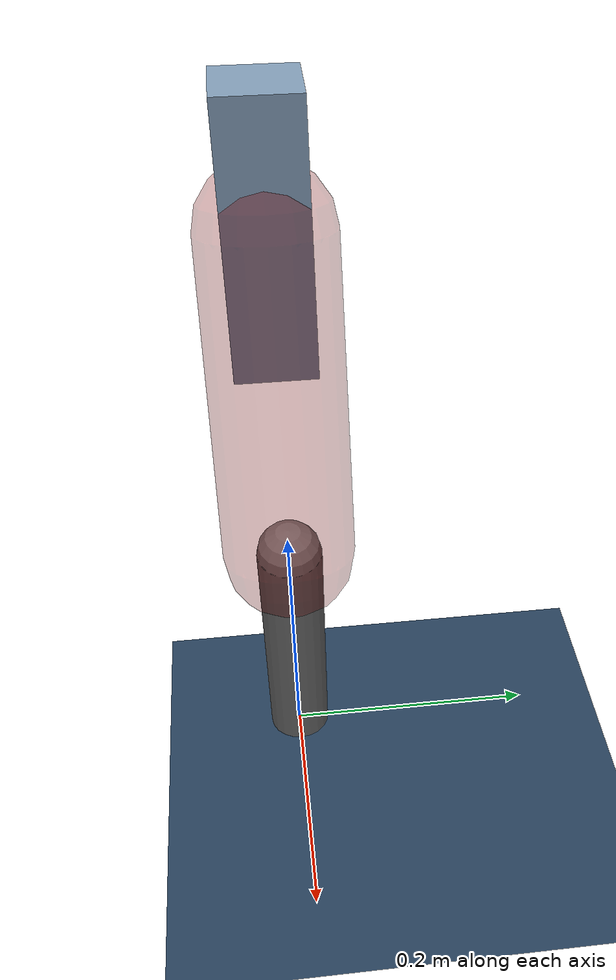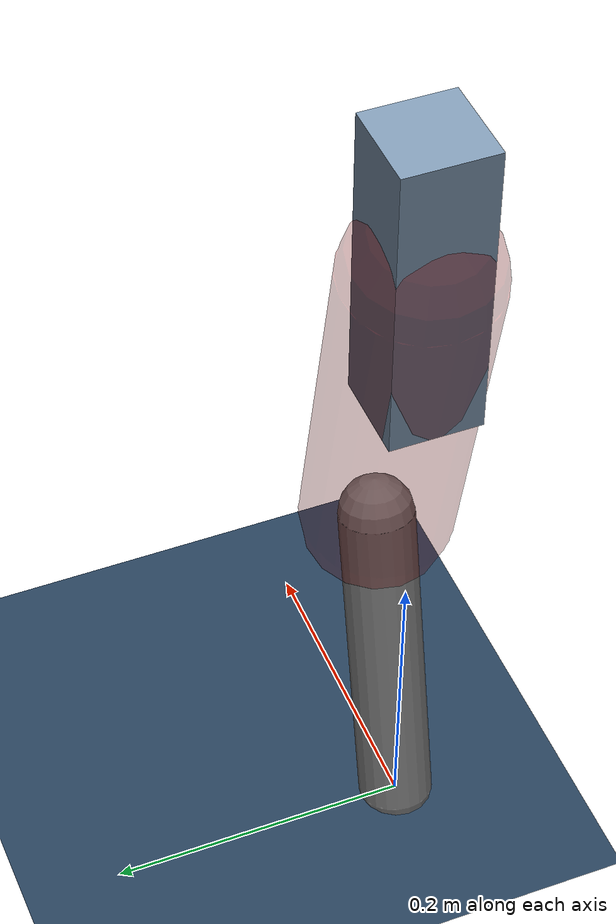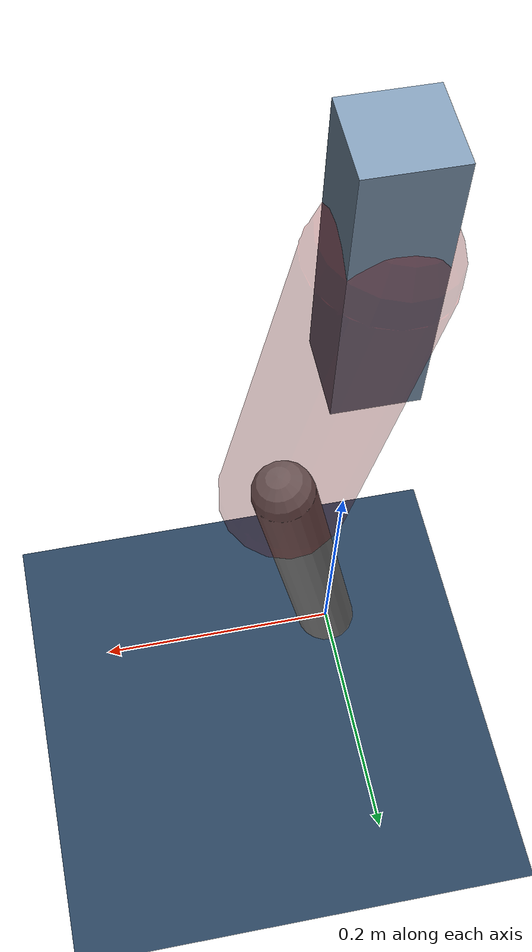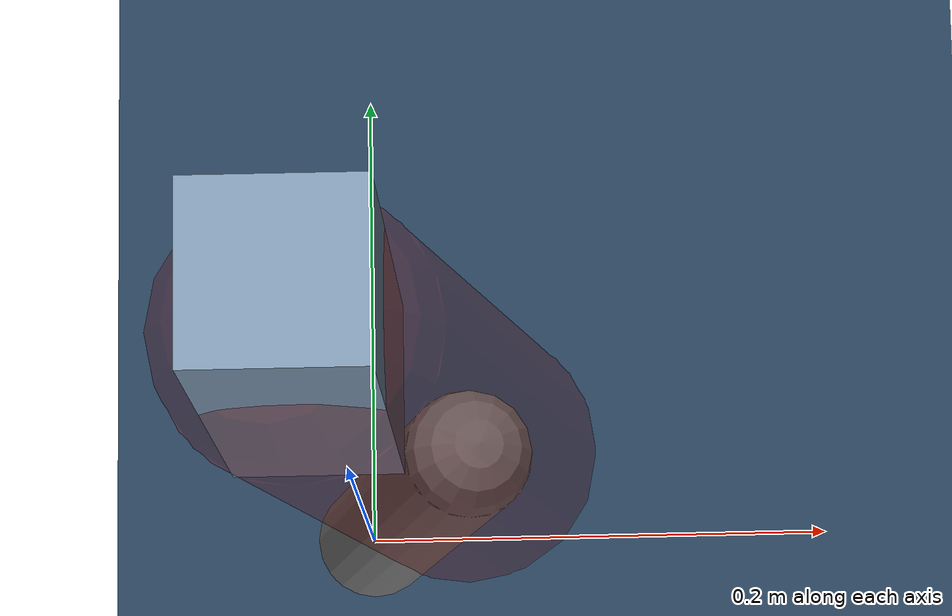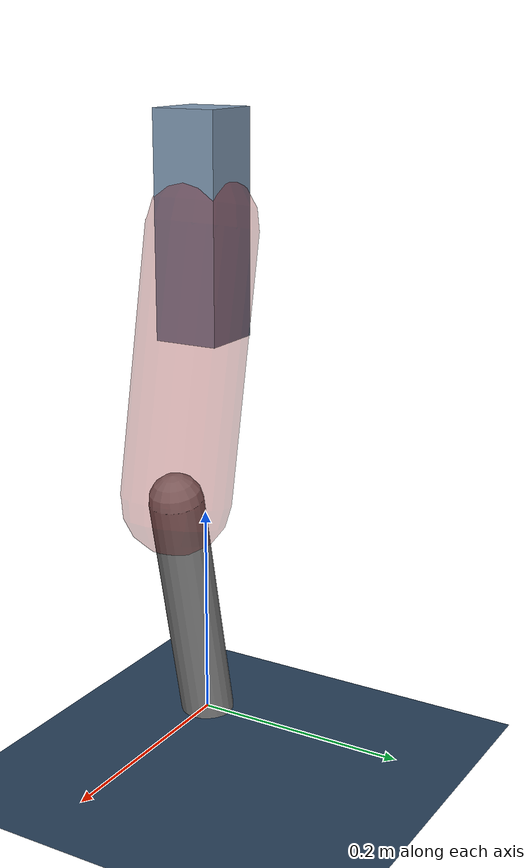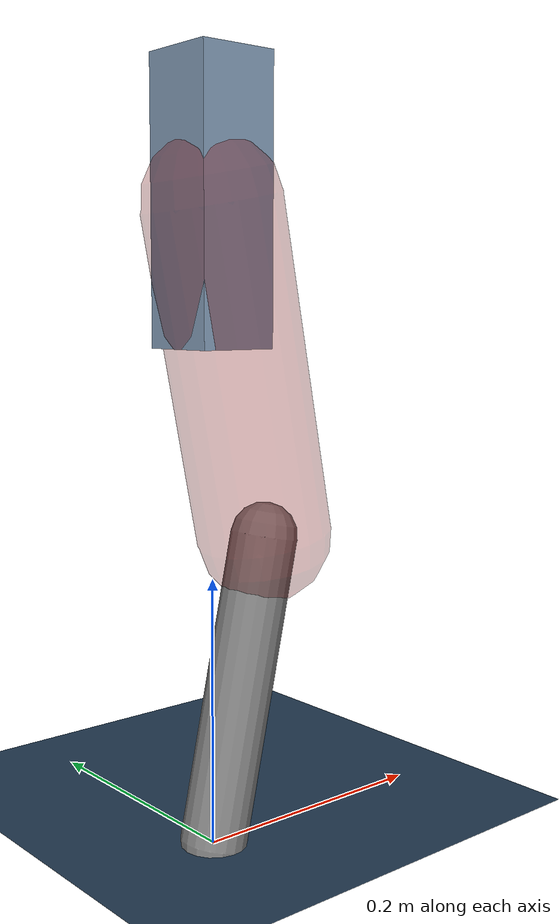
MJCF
<mujoco model="Hopper2D">
	<compiler inertiafromgeom="true" angle="radian" />
	<option timestep="0.001" integrator="implicit" cone="elliptic" solver="Newton" tolerance="1e-10" />

	<default>
		<geom contype="1" conaffinity="1" condim="3" friction="2 0.005 0.0001" solref="0.005 1" />
		<joint limited="true" damping="0.1" />
	</default>

	<asset>
		<texture name="skybox" type="skybox" builtin="gradient" rgb1=".4 .6 .8" rgb2="0 0 0" width="800" height="800" />
		<texture name="grid" type="2d" builtin="checker" rgb1=".1 .2 .3" rgb2=".2 .3 .4" width="300" height="300" mark="edge" markrgb=".2 .3 .4" />
		<material name="ground" texture="grid" texrepeat="1 1" texuniform="true" reflectance="0.1" />
		<material name="leg" rgba="0.5 0.6 0.7 1" />
	</asset>

	<worldbody>

		<geom name="floor" type="plane" size="5 5 0.25" material="ground" />

		<light directional="false" diffuse="0.8 0.8 0.8" specular="0.3 0.3 0.3" pos="0 0 2" dir="0 0 -1" />
		<light mode="targetbodycom" target="base" directional="false" diffuse="0.8 0.8 0.8" specular="0.3 0.3 0.3" pos="0 0 2" dir="0 0 -1" />

		<camera name="fixed" pos="0 -2 1" xyaxes="1 0 0 0 0 1" />
		<camera name="tracking" mode="trackcom" pos="0 -3 1" />

		<body name="root" pos="0 0 0.46541191950494876">
			<joint name="slide_x" type="slide" axis="1 0 0" range="-100 100" />
			<joint name="slide_z" type="slide" axis="0 0 1" range="0 10" />

			<body name="base" pos="0 0 0">
				<geom name="torso" type="box" size="0.03 0.03 0.1" mass="2.1719999999999997" material="leg" />

				<body name="link1" pos="0 0 0" euler="0 1.3704139956121826 0">
					<joint type="hinge" axis="0 -1 0" pos="0 0 0" name="hinge1" limited="true" range="-3.14 3.14" stiffness="0" damping="0.1" />
					<geom name="thigh" type="capsule" fromto="0 0 0 0.2435772579907201 0 0" size="0.05" rgba="0.5 0 0 0.3" mass="0.8398008707758723" />

					<body name="link2" pos="0.2435772579907201 0 0" euler="0 0.41106319047496803 0">
						<joint type="hinge" axis="0 -1 0" pos="0 0 0" name="hinge2" limited="true" range="-3.14 3.14" stiffness="0" damping="0.1" />
						<geom name="shank" type="capsule" fromto="0 0 0 0.23183466151422868 0 0" size="0.025" mass="0.42746772921138293" />

					</body>
				</body>
			</body>
		</body>
	</worldbody>

	<actuator>
		<motor name="torque1" joint="hinge1" ctrlrange="-34.185379674686246 34.185379674686246" ctrllimited="true" gear="1" />
		<motor name="torque2" joint="hinge2" ctrlrange="-54.39086624061191 54.39086624061191" ctrllimited="true" gear="1" />
	</actuator>
</mujoco>
